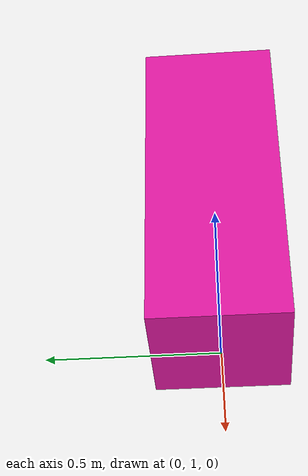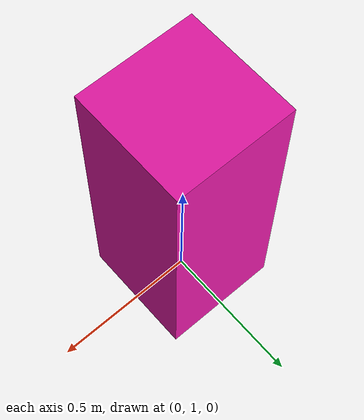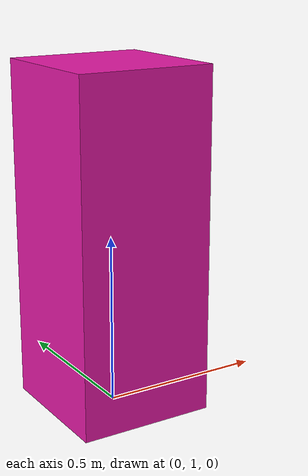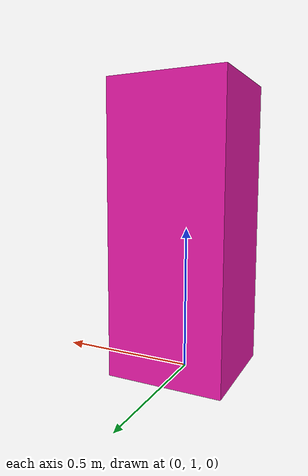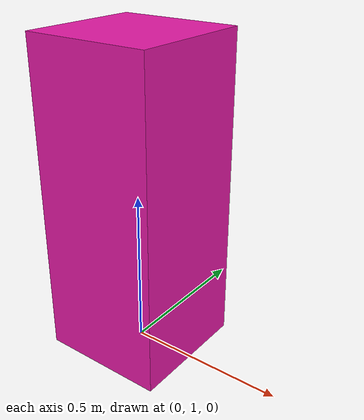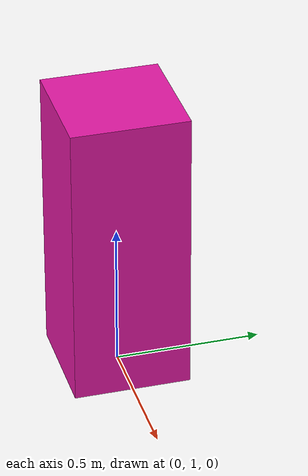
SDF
<?xml version="1.0"?>
<sdf version="1.10">
  <model name="zone_intruder">
    <static>true</static>
    <pose>0 1 0.5 0 0 0</pose>
    <link name="body">
      <collision name="collision">
        <geometry><box><size>0.4 0.4 1</size></box></geometry>
      </collision>
      <visual name="visual">
        <geometry><box><size>0.4 0.4 1</size></box></geometry>
        <material><diffuse>0.9 0.1 0.65 1</diffuse></material>
      </visual>
    </link>
  </model>
</sdf>
